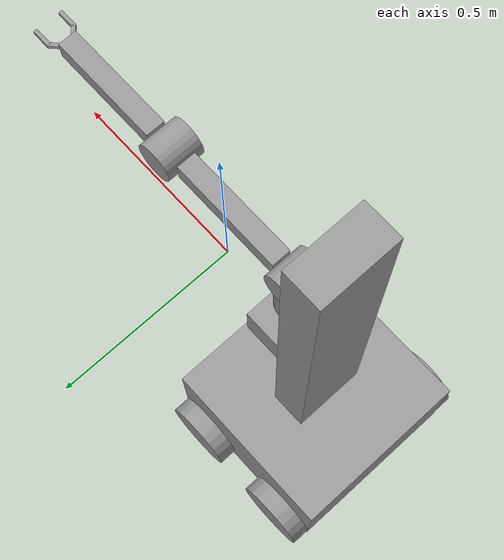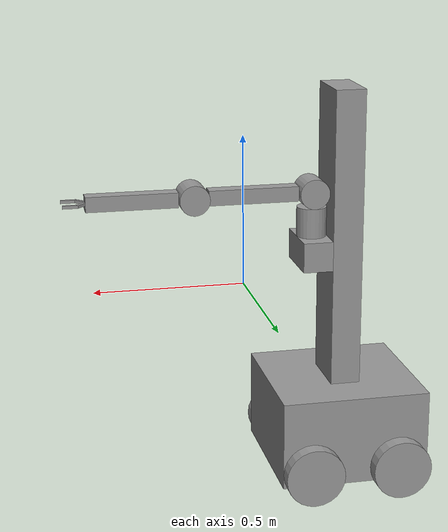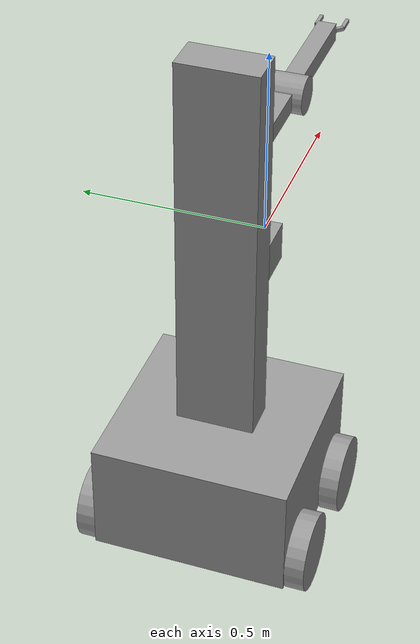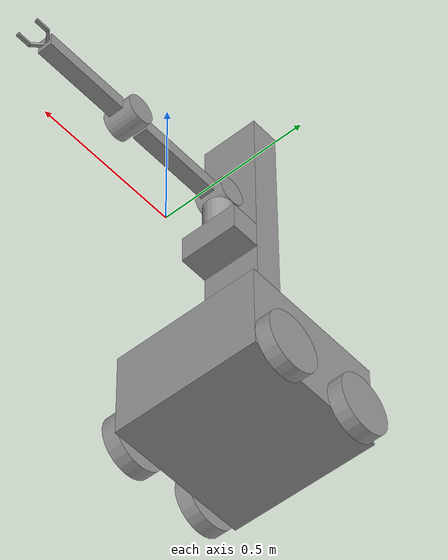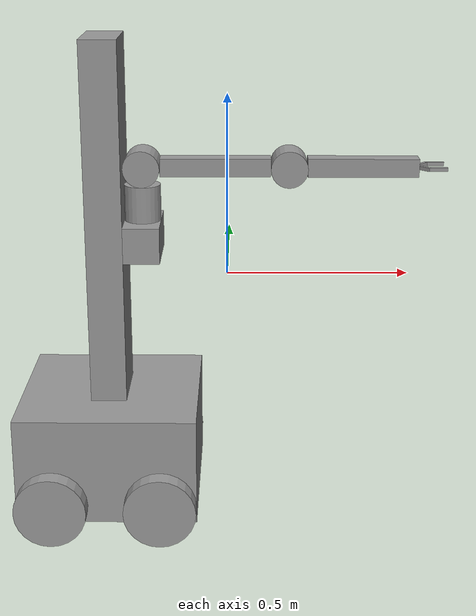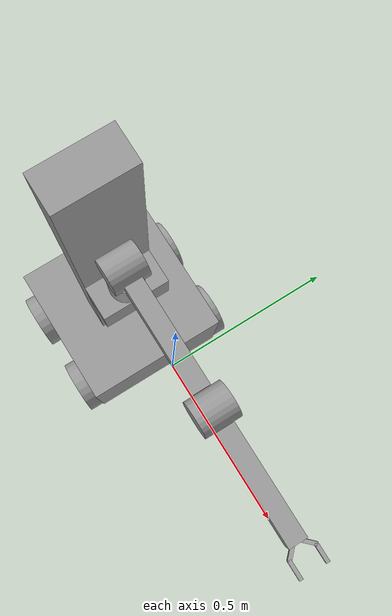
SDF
<?xml version='1.0'?>
<sdf version='1.6'>
  <model name='mymobilearm'>
    <link name='link_0'>
      <inertial>
        <mass>1</mass>
        <inertia>
          <ixx>0.166667</ixx>
          <ixy>0</ixy>
          <ixz>0</ixz>
          <iyy>0.166667</iyy>
          <iyz>0</iyz>
          <izz>0.166667</izz>
        </inertia>
        <pose frame=''>0 0 0 0 -0 0</pose>
      </inertial>
      <pose frame=''>-0.332375 0 -0.496874 0 -0 0</pose>
      <gravity>1</gravity>
      <self_collide>0</self_collide>
      <kinematic>0</kinematic>
      <enable_wind>0</enable_wind>
      <visual name='visual'>
        <pose frame=''>0 0 0 0 -0 0</pose>
        <geometry>
          <box>
            <size>0.5 0.5 0.3</size>
          </box>
        </geometry>
        <material>
          <lighting>1</lighting>
          <script>
            <uri>file://media/materials/scripts/gazebo.material</uri>
            <name>Gazebo/Grey</name>
          </script>
          <shader type='pixel'>
            <normal_map>__default__</normal_map>
          </shader>
          <ambient>0.3 0.3 0.3 1</ambient>
          <diffuse>0.7 0.7 0.7 1</diffuse>
          <specular>0.01 0.01 0.01 1</specular>
          <emissive>0 0 0 1</emissive>
        </material>
        <transparency>0</transparency>
        <cast_shadows>1</cast_shadows>
      </visual>
      <collision name='collision'>
        <laser_retro>0</laser_retro>
        <max_contacts>10</max_contacts>
        <pose frame=''>0 0 0 0 -0 0</pose>
        <geometry>
          <box>
            <size>0.5 0.5 0.3</size>
          </box>
        </geometry>
        <surface>
          <friction>
            <ode>
              <mu>1</mu>
              <mu2>1</mu2>
              <fdir1>0 0 0</fdir1>
              <slip1>0</slip1>
              <slip2>0</slip2>
            </ode>
            <torsional>
              <coefficient>1</coefficient>
              <patch_radius>0</patch_radius>
              <surface_radius>0</surface_radius>
              <use_patch_radius>1</use_patch_radius>
              <ode>
                <slip>0</slip>
              </ode>
            </torsional>
          </friction>
          <bounce>
            <restitution_coefficient>0</restitution_coefficient>
            <threshold>1e+06</threshold>
          </bounce>
          <contact>
            <collide_without_contact>0</collide_without_contact>
            <collide_without_contact_bitmask>1</collide_without_contact_bitmask>
            <collide_bitmask>1</collide_bitmask>
            <ode>
              <soft_cfm>0</soft_cfm>
              <soft_erp>0.2</soft_erp>
              <kp>1e+13</kp>
              <kd>1</kd>
              <max_vel>0.01</max_vel>
              <min_depth>0</min_depth>
            </ode>
            <bullet>
              <split_impulse>1</split_impulse>
              <split_impulse_penetration_threshold>-0.01</split_impulse_penetration_threshold>
              <soft_cfm>0</soft_cfm>
              <soft_erp>0.2</soft_erp>
              <kp>1e+13</kp>
              <kd>1</kd>
            </bullet>
          </contact>
        </surface>
      </collision>
    </link>
    <link name='link_10'>
      <inertial>
        <mass>1</mass>
        <inertia>
          <ixx>0.166667</ixx>
          <ixy>0</ixy>
          <ixz>0</ixz>
          <iyy>0.166667</iyy>
          <iyz>0</iyz>
          <izz>0.166667</izz>
        </inertia>
        <pose frame=''>0 0 0 0 -0 0</pose>
      </inertial>
      <pose frame=''>-0.332375 0 0.153126 0 -0 0</pose>
      <gravity>1</gravity>
      <self_collide>0</self_collide>
      <kinematic>0</kinematic>
      <enable_wind>0</enable_wind>
      <visual name='visual'>
        <pose frame=''>0 0 0 0 -0 0</pose>
        <geometry>
          <box>
            <size>0.1 0.2 1</size>
          </box>
        </geometry>
        <material>
          <lighting>1</lighting>
          <script>
            <uri>file://media/materials/scripts/gazebo.material</uri>
            <name>Gazebo/Grey</name>
          </script>
          <shader type='pixel'>
            <normal_map>__default__</normal_map>
          </shader>
          <ambient>0.3 0.3 0.3 1</ambient>
          <diffuse>0.7 0.7 0.7 1</diffuse>
          <specular>0.01 0.01 0.01 1</specular>
          <emissive>0 0 0 1</emissive>
        </material>
        <transparency>0</transparency>
        <cast_shadows>1</cast_shadows>
      </visual>
      <collision name='collision'>
        <laser_retro>0</laser_retro>
        <max_contacts>10</max_contacts>
        <pose frame=''>0 0 0 0 -0 0</pose>
        <geometry>
          <box>
            <size>0.1 0.2 1</size>
          </box>
        </geometry>
        <surface>
          <friction>
            <ode>
              <mu>1</mu>
              <mu2>1</mu2>
              <fdir1>0 0 0</fdir1>
              <slip1>0</slip1>
              <slip2>0</slip2>
            </ode>
            <torsional>
              <coefficient>1</coefficient>
              <patch_radius>0</patch_radius>
              <surface_radius>0</surface_radius>
              <use_patch_radius>1</use_patch_radius>
              <ode>
                <slip>0</slip>
              </ode>
            </torsional>
          </friction>
          <bounce>
            <restitution_coefficient>0</restitution_coefficient>
            <threshold>1e+06</threshold>
          </bounce>
          <contact>
            <collide_without_contact>0</collide_without_contact>
            <collide_without_contact_bitmask>1</collide_without_contact_bitmask>
            <collide_bitmask>1</collide_bitmask>
            <ode>
              <soft_cfm>0</soft_cfm>
              <soft_erp>0.2</soft_erp>
              <kp>1e+13</kp>
              <kd>1</kd>
              <max_vel>0.01</max_vel>
              <min_depth>0</min_depth>
            </ode>
            <bullet>
              <split_impulse>1</split_impulse>
              <split_impulse_penetration_threshold>-0.01</split_impulse_penetration_threshold>
              <soft_cfm>0</soft_cfm>
              <soft_erp>0.2</soft_erp>
              <kp>1e+13</kp>
              <kd>1</kd>
            </bullet>
          </contact>
        </surface>
      </collision>
    </link>
    <link name='link_11'>
      <inertial>
        <mass>1</mass>
        <inertia>
          <ixx>0.166667</ixx>
          <ixy>0</ixy>
          <ixz>0</ixz>
          <iyy>0.166667</iyy>
          <iyz>0</iyz>
          <izz>0.166667</izz>
        </inertia>
        <pose frame=''>0 0 0 0 -0 0</pose>
      </inertial>
      <pose frame=''>-0.232375 0 0.103126 0 -0 0</pose>
      <gravity>1</gravity>
      <self_collide>0</self_collide>
      <kinematic>0</kinematic>
      <enable_wind>0</enable_wind>
      <visual name='visual'>
        <pose frame=''>0 0 0 0 -0 0</pose>
        <geometry>
          <box>
            <size>0.1 0.2 0.1</size>
          </box>
        </geometry>
        <material>
          <lighting>1</lighting>
          <script>
            <uri>file://media/materials/scripts/gazebo.material</uri>
            <name>Gazebo/Grey</name>
          </script>
          <shader type='pixel'>
            <normal_map>__default__</normal_map>
          </shader>
          <ambient>0.3 0.3 0.3 1</ambient>
          <diffuse>0.7 0.7 0.7 1</diffuse>
          <specular>0.01 0.01 0.01 1</specular>
          <emissive>0 0 0 1</emissive>
        </material>
        <transparency>0</transparency>
        <cast_shadows>1</cast_shadows>
      </visual>
      <collision name='collision'>
        <laser_retro>0</laser_retro>
        <max_contacts>10</max_contacts>
        <pose frame=''>0 0 0 0 -0 0</pose>
        <geometry>
          <box>
            <size>0.1 0.2 0.1</size>
          </box>
        </geometry>
        <surface>
          <friction>
            <ode>
              <mu>1</mu>
              <mu2>1</mu2>
              <fdir1>0 0 0</fdir1>
              <slip1>0</slip1>
              <slip2>0</slip2>
            </ode>
            <torsional>
              <coefficient>1</coefficient>
              <patch_radius>0</patch_radius>
              <surface_radius>0</surface_radius>
              <use_patch_radius>1</use_patch_radius>
              <ode>
                <slip>0</slip>
              </ode>
            </torsional>
          </friction>
          <bounce>
            <restitution_coefficient>0</restitution_coefficient>
            <threshold>1e+06</threshold>
          </bounce>
          <contact>
            <collide_without_contact>0</collide_without_contact>
            <collide_without_contact_bitmask>1</collide_without_contact_bitmask>
            <collide_bitmask>1</collide_bitmask>
            <ode>
              <soft_cfm>0</soft_cfm>
              <soft_erp>0.2</soft_erp>
              <kp>1e+13</kp>
              <kd>1</kd>
              <max_vel>0.01</max_vel>
              <min_depth>0</min_depth>
            </ode>
            <bullet>
              <split_impulse>1</split_impulse>
              <split_impulse_penetration_threshold>-0.01</split_impulse_penetration_threshold>
              <soft_cfm>0</soft_cfm>
              <soft_erp>0.2</soft_erp>
              <kp>1e+13</kp>
              <kd>1</kd>
            </bullet>
          </contact>
        </surface>
      </collision>
    </link>
    <link name='link_12'>
      <inertial>
        <mass>1</mass>
        <inertia>
          <ixx>0.145833</ixx>
          <ixy>0</ixy>
          <ixz>0</ixz>
          <iyy>0.145833</iyy>
          <iyz>0</iyz>
          <izz>0.125</izz>
        </inertia>
        <pose frame=''>0 0 0 0 -0 0</pose>
      </inertial>
      <pose frame=''>-0.232375 0 0.203126 0 -0 0</pose>
      <gravity>1</gravity>
      <self_collide>0</self_collide>
      <kinematic>0</kinematic>
      <enable_wind>0</enable_wind>
      <visual name='visual'>
        <pose frame=''>0 0 0 0 -0 0</pose>
        <geometry>
          <cylinder>
            <radius>0.05</radius>
            <length>0.1</length>
          </cylinder>
        </geometry>
        <material>
          <lighting>1</lighting>
          <script>
            <uri>file://media/materials/scripts/gazebo.material</uri>
            <name>Gazebo/Grey</name>
          </script>
          <shader type='pixel'>
            <normal_map>__default__</normal_map>
          </shader>
          <ambient>0.3 0.3 0.3 1</ambient>
          <diffuse>0.7 0.7 0.7 1</diffuse>
          <specular>0.01 0.01 0.01 1</specular>
          <emissive>0 0 0 1</emissive>
        </material>
        <transparency>0</transparency>
        <cast_shadows>1</cast_shadows>
      </visual>
      <collision name='collision'>
        <laser_retro>0</laser_retro>
        <max_contacts>10</max_contacts>
        <pose frame=''>0 0 0 0 -0 0</pose>
        <geometry>
          <cylinder>
            <radius>0.05</radius>
            <length>0.1</length>
          </cylinder>
        </geometry>
        <surface>
          <friction>
            <ode>
              <mu>1</mu>
              <mu2>1</mu2>
              <fdir1>0 0 0</fdir1>
              <slip1>0</slip1>
              <slip2>0</slip2>
            </ode>
            <torsional>
              <coefficient>1</coefficient>
              <patch_radius>0</patch_radius>
              <surface_radius>0</surface_radius>
              <use_patch_radius>1</use_patch_radius>
              <ode>
                <slip>0</slip>
              </ode>
            </torsional>
          </friction>
          <bounce>
            <restitution_coefficient>0</restitution_coefficient>
            <threshold>1e+06</threshold>
          </bounce>
          <contact>
            <collide_without_contact>0</collide_without_contact>
            <collide_without_contact_bitmask>1</collide_without_contact_bitmask>
            <collide_bitmask>1</collide_bitmask>
            <ode>
              <soft_cfm>0</soft_cfm>
              <soft_erp>0.2</soft_erp>
              <kp>1e+13</kp>
              <kd>1</kd>
              <max_vel>0.01</max_vel>
              <min_depth>0</min_depth>
            </ode>
            <bullet>
              <split_impulse>1</split_impulse>
              <split_impulse_penetration_threshold>-0.01</split_impulse_penetration_threshold>
              <soft_cfm>0</soft_cfm>
              <soft_erp>0.2</soft_erp>
              <kp>1e+13</kp>
              <kd>1</kd>
            </bullet>
          </contact>
        </surface>
      </collision>
    </link>
    <link name='link_12_clone'>
      <inertial>
        <mass>1</mass>
        <inertia>
          <ixx>0.145833</ixx>
          <ixy>0</ixy>
          <ixz>0</ixz>
          <iyy>0.145833</iyy>
          <iyz>0</iyz>
          <izz>0.125</izz>
        </inertia>
        <pose frame=''>0 0 0 0 -0 0</pose>
      </inertial>
      <pose frame=''>-0.232375 0 0.303126 1.5707 -0 0</pose>
      <gravity>1</gravity>
      <self_collide>0</self_collide>
      <kinematic>0</kinematic>
      <enable_wind>0</enable_wind>
      <visual name='visual'>
        <pose frame=''>0 0 0 0 -0 0</pose>
        <geometry>
          <cylinder>
            <radius>0.05</radius>
            <length>0.1</length>
          </cylinder>
        </geometry>
        <material>
          <lighting>1</lighting>
          <script>
            <uri>file://media/materials/scripts/gazebo.material</uri>
            <name>Gazebo/Grey</name>
          </script>
          <shader type='pixel'>
            <normal_map>__default__</normal_map>
          </shader>
          <ambient>0.3 0.3 0.3 1</ambient>
          <diffuse>0.7 0.7 0.7 1</diffuse>
          <specular>0.01 0.01 0.01 1</specular>
          <emissive>0 0 0 1</emissive>
        </material>
        <transparency>0</transparency>
        <cast_shadows>1</cast_shadows>
      </visual>
      <collision name='collision'>
        <laser_retro>0</laser_retro>
        <max_contacts>10</max_contacts>
        <pose frame=''>0 0 0 0 -0 0</pose>
        <geometry>
          <cylinder>
            <radius>0.05</radius>
            <length>0.1</length>
          </cylinder>
        </geometry>
        <surface>
          <friction>
            <ode>
              <mu>1</mu>
              <mu2>1</mu2>
              <fdir1>0 0 0</fdir1>
              <slip1>0</slip1>
              <slip2>0</slip2>
            </ode>
            <torsional>
              <coefficient>1</coefficient>
              <patch_radius>0</patch_radius>
              <surface_radius>0</surface_radius>
              <use_patch_radius>1</use_patch_radius>
              <ode>
                <slip>0</slip>
              </ode>
            </torsional>
          </friction>
          <bounce>
            <restitution_coefficient>0</restitution_coefficient>
            <threshold>1e+06</threshold>
          </bounce>
          <contact>
            <collide_without_contact>0</collide_without_contact>
            <collide_without_contact_bitmask>1</collide_without_contact_bitmask>
            <collide_bitmask>1</collide_bitmask>
            <ode>
              <soft_cfm>0</soft_cfm>
              <soft_erp>0.2</soft_erp>
              <kp>1e+13</kp>
              <kd>1</kd>
              <max_vel>0.01</max_vel>
              <min_depth>0</min_depth>
            </ode>
            <bullet>
              <split_impulse>1</split_impulse>
              <split_impulse_penetration_threshold>-0.01</split_impulse_penetration_threshold>
              <soft_cfm>0</soft_cfm>
              <soft_erp>0.2</soft_erp>
              <kp>1e+13</kp>
              <kd>1</kd>
            </bullet>
          </contact>
        </surface>
      </collision>
    </link>
    <link name='link_12_clone_clone'>
      <inertial>
        <mass>1</mass>
        <inertia>
          <ixx>0.145833</ixx>
          <ixy>0</ixy>
          <ixz>0</ixz>
          <iyy>0.145833</iyy>
          <iyz>0</iyz>
          <izz>0.125</izz>
        </inertia>
        <pose frame=''>0 0 0 0 -0 0</pose>
      </inertial>
      <pose frame=''>0.167625 0 0.303126 1.5707 -0 0</pose>
      <gravity>1</gravity>
      <self_collide>0</self_collide>
      <kinematic>0</kinematic>
      <enable_wind>0</enable_wind>
      <visual name='visual'>
        <pose frame=''>0 0 0 0 -0 0</pose>
        <geometry>
          <cylinder>
            <radius>0.05</radius>
            <length>0.1</length>
          </cylinder>
        </geometry>
        <material>
          <lighting>1</lighting>
          <script>
            <uri>file://media/materials/scripts/gazebo.material</uri>
            <name>Gazebo/Grey</name>
          </script>
          <shader type='pixel'>
            <normal_map>__default__</normal_map>
          </shader>
          <ambient>0.3 0.3 0.3 1</ambient>
          <diffuse>0.7 0.7 0.7 1</diffuse>
          <specular>0.01 0.01 0.01 1</specular>
          <emissive>0 0 0 1</emissive>
        </material>
        <transparency>0</transparency>
        <cast_shadows>1</cast_shadows>
      </visual>
      <collision name='collision'>
        <laser_retro>0</laser_retro>
        <max_contacts>10</max_contacts>
        <pose frame=''>0 0 0 0 -0 0</pose>
        <geometry>
          <cylinder>
            <radius>0.05</radius>
            <length>0.1</length>
          </cylinder>
        </geometry>
        <surface>
          <friction>
            <ode>
              <mu>1</mu>
              <mu2>1</mu2>
              <fdir1>0 0 0</fdir1>
              <slip1>0</slip1>
              <slip2>0</slip2>
            </ode>
            <torsional>
              <coefficient>1</coefficient>
              <patch_radius>0</patch_radius>
              <surface_radius>0</surface_radius>
              <use_patch_radius>1</use_patch_radius>
              <ode>
                <slip>0</slip>
              </ode>
            </torsional>
          </friction>
          <bounce>
            <restitution_coefficient>0</restitution_coefficient>
            <threshold>1e+06</threshold>
          </bounce>
          <contact>
            <collide_without_contact>0</collide_without_contact>
            <collide_without_contact_bitmask>1</collide_without_contact_bitmask>
            <collide_bitmask>1</collide_bitmask>
            <ode>
              <soft_cfm>0</soft_cfm>
              <soft_erp>0.2</soft_erp>
              <kp>1e+13</kp>
              <kd>1</kd>
              <max_vel>0.01</max_vel>
              <min_depth>0</min_depth>
            </ode>
            <bullet>
              <split_impulse>1</split_impulse>
              <split_impulse_penetration_threshold>-0.01</split_impulse_penetration_threshold>
              <soft_cfm>0</soft_cfm>
              <soft_erp>0.2</soft_erp>
              <kp>1e+13</kp>
              <kd>1</kd>
            </bullet>
          </contact>
        </surface>
      </collision>
    </link>
    <link name='link_14'>
      <inertial>
        <mass>1</mass>
        <inertia>
          <ixx>0.166667</ixx>
          <ixy>0</ixy>
          <ixz>0</ixz>
          <iyy>0.166667</iyy>
          <iyz>0</iyz>
          <izz>0.166667</izz>
        </inertia>
        <pose frame=''>0 0 0 0 -0 0</pose>
      </inertial>
      <pose frame=''>-0.032375 0 0.303126 1.5707 -0 0</pose>
      <gravity>1</gravity>
      <self_collide>0</self_collide>
      <kinematic>0</kinematic>
      <enable_wind>0</enable_wind>
      <visual name='visual'>
        <pose frame=''>0 0 0 0 -0 0</pose>
        <geometry>
          <box>
            <size>0.3 0.05 0.05</size>
          </box>
        </geometry>
        <material>
          <lighting>1</lighting>
          <script>
            <uri>file://media/materials/scripts/gazebo.material</uri>
            <name>Gazebo/Grey</name>
          </script>
          <shader type='pixel'>
            <normal_map>__default__</normal_map>
          </shader>
          <ambient>0.3 0.3 0.3 1</ambient>
          <diffuse>0.7 0.7 0.7 1</diffuse>
          <specular>0.01 0.01 0.01 1</specular>
          <emissive>0 0 0 1</emissive>
        </material>
        <transparency>0</transparency>
        <cast_shadows>1</cast_shadows>
      </visual>
      <collision name='collision'>
        <laser_retro>0</laser_retro>
        <max_contacts>10</max_contacts>
        <pose frame=''>0 0 0 0 -0 0</pose>
        <geometry>
          <box>
            <size>0.3 0.05 0.05</size>
          </box>
        </geometry>
        <surface>
          <friction>
            <ode>
              <mu>1</mu>
              <mu2>1</mu2>
              <fdir1>0 0 0</fdir1>
              <slip1>0</slip1>
              <slip2>0</slip2>
            </ode>
            <torsional>
              <coefficient>1</coefficient>
              <patch_radius>0</patch_radius>
              <surface_radius>0</surface_radius>
              <use_patch_radius>1</use_patch_radius>
              <ode>
                <slip>0</slip>
              </ode>
            </torsional>
          </friction>
          <bounce>
            <restitution_coefficient>0</restitution_coefficient>
            <threshold>1e+06</threshold>
          </bounce>
          <contact>
            <collide_without_contact>0</collide_without_contact>
            <collide_without_contact_bitmask>1</collide_without_contact_bitmask>
            <collide_bitmask>1</collide_bitmask>
            <ode>
              <soft_cfm>0</soft_cfm>
              <soft_erp>0.2</soft_erp>
              <kp>1e+13</kp>
              <kd>1</kd>
              <max_vel>0.01</max_vel>
              <min_depth>0</min_depth>
            </ode>
            <bullet>
              <split_impulse>1</split_impulse>
              <split_impulse_penetration_threshold>-0.01</split_impulse_penetration_threshold>
              <soft_cfm>0</soft_cfm>
              <soft_erp>0.2</soft_erp>
              <kp>1e+13</kp>
              <kd>1</kd>
            </bullet>
          </contact>
        </surface>
      </collision>
    </link>
    <link name='link_14_clone'>
      <inertial>
        <mass>1</mass>
        <inertia>
          <ixx>0.166667</ixx>
          <ixy>0</ixy>
          <ixz>0</ixz>
          <iyy>0.166667</iyy>
          <iyz>0</iyz>
          <izz>0.166667</izz>
        </inertia>
        <pose frame=''>0 0 0 0 -0 0</pose>
      </inertial>
      <pose frame=''>0.367625 0 0.303126 1.5707 -0 0</pose>
      <gravity>1</gravity>
      <self_collide>0</self_collide>
      <kinematic>0</kinematic>
      <enable_wind>0</enable_wind>
      <visual name='visual'>
        <pose frame=''>0 0 0 0 -0 0</pose>
        <geometry>
          <box>
            <size>0.3 0.05 0.05</size>
          </box>
        </geometry>
        <material>
          <lighting>1</lighting>
          <script>
            <uri>file://media/materials/scripts/gazebo.material</uri>
            <name>Gazebo/Grey</name>
          </script>
          <shader type='pixel'>
            <normal_map>__default__</normal_map>
          </shader>
          <ambient>0.3 0.3 0.3 1</ambient>
          <diffuse>0.7 0.7 0.7 1</diffuse>
          <specular>0.01 0.01 0.01 1</specular>
          <emissive>0 0 0 1</emissive>
        </material>
        <transparency>0</transparency>
        <cast_shadows>1</cast_shadows>
      </visual>
      <collision name='collision'>
        <laser_retro>0</laser_retro>
        <max_contacts>10</max_contacts>
        <pose frame=''>0 0 0 0 -0 0</pose>
        <geometry>
          <box>
            <size>0.3 0.05 0.05</size>
          </box>
        </geometry>
        <surface>
          <friction>
            <ode>
              <mu>1</mu>
              <mu2>1</mu2>
              <fdir1>0 0 0</fdir1>
              <slip1>0</slip1>
              <slip2>0</slip2>
            </ode>
            <torsional>
              <coefficient>1</coefficient>
              <patch_radius>0</patch_radius>
              <surface_radius>0</surface_radius>
              <use_patch_radius>1</use_patch_radius>
              <ode>
                <slip>0</slip>
              </ode>
            </torsional>
          </friction>
          <bounce>
            <restitution_coefficient>0</restitution_coefficient>
            <threshold>1e+06</threshold>
          </bounce>
          <contact>
            <collide_without_contact>0</collide_without_contact>
            <collide_without_contact_bitmask>1</collide_without_contact_bitmask>
            <collide_bitmask>1</collide_bitmask>
            <ode>
              <soft_cfm>0</soft_cfm>
              <soft_erp>0.2</soft_erp>
              <kp>1e+13</kp>
              <kd>1</kd>
              <max_vel>0.01</max_vel>
              <min_depth>0</min_depth>
            </ode>
            <bullet>
              <split_impulse>1</split_impulse>
              <split_impulse_penetration_threshold>-0.01</split_impulse_penetration_threshold>
              <soft_cfm>0</soft_cfm>
              <soft_erp>0.2</soft_erp>
              <kp>1e+13</kp>
              <kd>1</kd>
            </bullet>
          </contact>
        </surface>
      </collision>
    </link>
    <link name='link_15'>
      <inertial>
        <mass>1</mass>
        <inertia>
          <ixx>0.166667</ixx>
          <ixy>0</ixy>
          <ixz>0</ixz>
          <iyy>0.166667</iyy>
          <iyz>0</iyz>
          <izz>0.166667</izz>
        </inertia>
        <pose frame=''>0 0 0 0 -0 0</pose>
      </inertial>
      <pose frame=''>0.566625 0.036 0.303126 0 -0 0</pose>
      <gravity>1</gravity>
      <self_collide>0</self_collide>
      <kinematic>0</kinematic>
      <enable_wind>0</enable_wind>
      <visual name='visual'>
        <pose frame=''>0 0 0 0 -0 0</pose>
        <geometry>
          <box>
            <size>0.05 0.01 0.01</size>
          </box>
        </geometry>
        <material>
          <lighting>1</lighting>
          <script>
            <uri>file://media/materials/scripts/gazebo.material</uri>
            <name>Gazebo/Grey</name>
          </script>
          <shader type='pixel'>
            <normal_map>__default__</normal_map>
          </shader>
          <ambient>0.3 0.3 0.3 1</ambient>
          <diffuse>0.7 0.7 0.7 1</diffuse>
          <specular>0.01 0.01 0.01 1</specular>
          <emissive>0 0 0 1</emissive>
        </material>
        <transparency>0</transparency>
        <cast_shadows>1</cast_shadows>
      </visual>
      <collision name='collision'>
        <laser_retro>0</laser_retro>
        <max_contacts>10</max_contacts>
        <pose frame=''>0 0 0 0 -0 0</pose>
        <geometry>
          <box>
            <size>0.05 0.01 0.01</size>
          </box>
        </geometry>
        <surface>
          <friction>
            <ode>
              <mu>1</mu>
              <mu2>1</mu2>
              <fdir1>0 0 0</fdir1>
              <slip1>0</slip1>
              <slip2>0</slip2>
            </ode>
            <torsional>
              <coefficient>1</coefficient>
              <patch_radius>0</patch_radius>
              <surface_radius>0</surface_radius>
              <use_patch_radius>1</use_patch_radius>
              <ode>
                <slip>0</slip>
              </ode>
            </torsional>
          </friction>
          <bounce>
            <restitution_coefficient>0</restitution_coefficient>
            <threshold>1e+06</threshold>
          </bounce>
          <contact>
            <collide_without_contact>0</collide_without_contact>
            <collide_without_contact_bitmask>1</collide_without_contact_bitmask>
            <collide_bitmask>1</collide_bitmask>
            <ode>
              <soft_cfm>0</soft_cfm>
              <soft_erp>0.2</soft_erp>
              <kp>1e+13</kp>
              <kd>1</kd>
              <max_vel>0.01</max_vel>
              <min_depth>0</min_depth>
            </ode>
            <bullet>
              <split_impulse>1</split_impulse>
              <split_impulse_penetration_threshold>-0.01</split_impulse_penetration_threshold>
              <soft_cfm>0</soft_cfm>
              <soft_erp>0.2</soft_erp>
              <kp>1e+13</kp>
              <kd>1</kd>
            </bullet>
          </contact>
        </surface>
      </collision>
    </link>
    <link name='link_15_clone'>
      <inertial>
        <mass>1</mass>
        <inertia>
          <ixx>0.166667</ixx>
          <ixy>0</ixy>
          <ixz>0</ixz>
          <iyy>0.166667</iyy>
          <iyz>0</iyz>
          <izz>0.166667</izz>
        </inertia>
        <pose frame=''>0 0 0 0 -0 0</pose>
      </inertial>
      <pose frame=''>0.566625 -0.036 0.303126 0 -0 0</pose>
      <gravity>1</gravity>
      <self_collide>0</self_collide>
      <kinematic>0</kinematic>
      <enable_wind>0</enable_wind>
      <visual name='visual'>
        <pose frame=''>0 0 0 0 -0 0</pose>
        <geometry>
          <box>
            <size>0.05 0.01 0.01</size>
          </box>
        </geometry>
        <material>
          <lighting>1</lighting>
          <script>
            <uri>file://media/materials/scripts/gazebo.material</uri>
            <name>Gazebo/Grey</name>
          </script>
          <shader type='pixel'>
            <normal_map>__default__</normal_map>
          </shader>
          <ambient>0.3 0.3 0.3 1</ambient>
          <diffuse>0.7 0.7 0.7 1</diffuse>
          <specular>0.01 0.01 0.01 1</specular>
          <emissive>0 0 0 1</emissive>
        </material>
        <transparency>0</transparency>
        <cast_shadows>1</cast_shadows>
      </visual>
      <collision name='collision'>
        <laser_retro>0</laser_retro>
        <max_contacts>10</max_contacts>
        <pose frame=''>0 0 0 0 -0 0</pose>
        <geometry>
          <box>
            <size>0.05 0.01 0.01</size>
          </box>
        </geometry>
        <surface>
          <friction>
            <ode>
              <mu>1</mu>
              <mu2>1</mu2>
              <fdir1>0 0 0</fdir1>
              <slip1>0</slip1>
              <slip2>0</slip2>
            </ode>
            <torsional>
              <coefficient>1</coefficient>
              <patch_radius>0</patch_radius>
              <surface_radius>0</surface_radius>
              <use_patch_radius>1</use_patch_radius>
              <ode>
                <slip>0</slip>
              </ode>
            </torsional>
          </friction>
          <bounce>
            <restitution_coefficient>0</restitution_coefficient>
            <threshold>1e+06</threshold>
          </bounce>
          <contact>
            <collide_without_contact>0</collide_without_contact>
            <collide_without_contact_bitmask>1</collide_without_contact_bitmask>
            <collide_bitmask>1</collide_bitmask>
            <ode>
              <soft_cfm>0</soft_cfm>
              <soft_erp>0.2</soft_erp>
              <kp>1e+13</kp>
              <kd>1</kd>
              <max_vel>0.01</max_vel>
              <min_depth>0</min_depth>
            </ode>
            <bullet>
              <split_impulse>1</split_impulse>
              <split_impulse_penetration_threshold>-0.01</split_impulse_penetration_threshold>
              <soft_cfm>0</soft_cfm>
              <soft_erp>0.2</soft_erp>
              <kp>1e+13</kp>
              <kd>1</kd>
            </bullet>
          </contact>
        </surface>
      </collision>
    </link>
    <link name='link_15_clone_0'>
      <inertial>
        <mass>1</mass>
        <inertia>
          <ixx>0.166667</ixx>
          <ixy>0</ixy>
          <ixz>0</ixz>
          <iyy>0.166667</iyy>
          <iyz>0</iyz>
          <izz>0.166667</izz>
        </inertia>
        <pose frame=''>0 0 0 0 -0 0</pose>
      </inertial>
      <pose frame=''>0.527625 -0.02 0.303126 0 0 -0.785398</pose>
      <gravity>1</gravity>
      <self_collide>0</self_collide>
      <kinematic>0</kinematic>
      <enable_wind>0</enable_wind>
      <visual name='visual'>
        <pose frame=''>0 0 0 0 -0 0</pose>
        <geometry>
          <box>
            <size>0.05 0.01 0.01</size>
          </box>
        </geometry>
        <material>
          <lighting>1</lighting>
          <script>
            <uri>file://media/materials/scripts/gazebo.material</uri>
            <name>Gazebo/Grey</name>
          </script>
          <shader type='pixel'>
            <normal_map>__default__</normal_map>
          </shader>
          <ambient>0.3 0.3 0.3 1</ambient>
          <diffuse>0.7 0.7 0.7 1</diffuse>
          <specular>0.01 0.01 0.01 1</specular>
          <emissive>0 0 0 1</emissive>
        </material>
        <transparency>0</transparency>
        <cast_shadows>1</cast_shadows>
      </visual>
      <collision name='collision'>
        <laser_retro>0</laser_retro>
        <max_contacts>10</max_contacts>
        <pose frame=''>0 0 0 0 -0 0</pose>
        <geometry>
          <box>
            <size>0.05 0.01 0.01</size>
          </box>
        </geometry>
        <surface>
          <friction>
            <ode>
              <mu>1</mu>
              <mu2>1</mu2>
              <fdir1>0 0 0</fdir1>
              <slip1>0</slip1>
              <slip2>0</slip2>
            </ode>
            <torsional>
              <coefficient>1</coefficient>
              <patch_radius>0</patch_radius>
              <surface_radius>0</surface_radius>
              <use_patch_radius>1</use_patch_radius>
              <ode>
                <slip>0</slip>
              </ode>
            </torsional>
          </friction>
          <bounce>
            <restitution_coefficient>0</restitution_coefficient>
            <threshold>1e+06</threshold>
          </bounce>
          <contact>
            <collide_without_contact>0</collide_without_contact>
            <collide_without_contact_bitmask>1</collide_without_contact_bitmask>
            <collide_bitmask>1</collide_bitmask>
            <ode>
              <soft_cfm>0</soft_cfm>
              <soft_erp>0.2</soft_erp>
              <kp>1e+13</kp>
              <kd>1</kd>
              <max_vel>0.01</max_vel>
              <min_depth>0</min_depth>
            </ode>
            <bullet>
              <split_impulse>1</split_impulse>
              <split_impulse_penetration_threshold>-0.01</split_impulse_penetration_threshold>
              <soft_cfm>0</soft_cfm>
              <soft_erp>0.2</soft_erp>
              <kp>1e+13</kp>
              <kd>1</kd>
            </bullet>
          </contact>
        </surface>
      </collision>
    </link>
    <link name='link_15_clone_1'>
      <inertial>
        <mass>1</mass>
        <inertia>
          <ixx>0.166667</ixx>
          <ixy>0</ixy>
          <ixz>0</ixz>
          <iyy>0.166667</iyy>
          <iyz>0</iyz>
          <izz>0.166667</izz>
        </inertia>
        <pose frame=''>0 0 0 0 -0 0</pose>
      </inertial>
      <pose frame=''>0.527625 0.02 0.303126 0 -0 0.785398</pose>
      <gravity>1</gravity>
      <self_collide>0</self_collide>
      <kinematic>0</kinematic>
      <enable_wind>0</enable_wind>
      <visual name='visual'>
        <pose frame=''>0 0 0 0 -0 0</pose>
        <geometry>
          <box>
            <size>0.05 0.01 0.01</size>
          </box>
        </geometry>
        <material>
          <lighting>1</lighting>
          <script>
            <uri>file://media/materials/scripts/gazebo.material</uri>
            <name>Gazebo/Grey</name>
          </script>
          <shader type='pixel'>
            <normal_map>__default__</normal_map>
          </shader>
          <ambient>0.3 0.3 0.3 1</ambient>
          <diffuse>0.7 0.7 0.7 1</diffuse>
          <specular>0.01 0.01 0.01 1</specular>
          <emissive>0 0 0 1</emissive>
        </material>
        <transparency>0</transparency>
        <cast_shadows>1</cast_shadows>
      </visual>
      <collision name='collision'>
        <laser_retro>0</laser_retro>
        <max_contacts>10</max_contacts>
        <pose frame=''>0 0 0 0 -0 0</pose>
        <geometry>
          <box>
            <size>0.05 0.01 0.01</size>
          </box>
        </geometry>
        <surface>
          <friction>
            <ode>
              <mu>1</mu>
              <mu2>1</mu2>
              <fdir1>0 0 0</fdir1>
              <slip1>0</slip1>
              <slip2>0</slip2>
            </ode>
            <torsional>
              <coefficient>1</coefficient>
              <patch_radius>0</patch_radius>
              <surface_radius>0</surface_radius>
              <use_patch_radius>1</use_patch_radius>
              <ode>
                <slip>0</slip>
              </ode>
            </torsional>
          </friction>
          <bounce>
            <restitution_coefficient>0</restitution_coefficient>
            <threshold>1e+06</threshold>
          </bounce>
          <contact>
            <collide_without_contact>0</collide_without_contact>
            <collide_without_contact_bitmask>1</collide_without_contact_bitmask>
            <collide_bitmask>1</collide_bitmask>
            <ode>
              <soft_cfm>0</soft_cfm>
              <soft_erp>0.2</soft_erp>
              <kp>1e+13</kp>
              <kd>1</kd>
              <max_vel>0.01</max_vel>
              <min_depth>0</min_depth>
            </ode>
            <bullet>
              <split_impulse>1</split_impulse>
              <split_impulse_penetration_threshold>-0.01</split_impulse_penetration_threshold>
              <soft_cfm>0</soft_cfm>
              <soft_erp>0.2</soft_erp>
              <kp>1e+13</kp>
              <kd>1</kd>
            </bullet>
          </contact>
        </surface>
      </collision>
    </link>
    <link name='link_1_clone'>
      <inertial>
        <mass>1</mass>
        <inertia>
          <ixx>0.145833</ixx>
          <ixy>0</ixy>
          <ixz>0</ixz>
          <iyy>0.145833</iyy>
          <iyz>0</iyz>
          <izz>0.125</izz>
        </inertia>
        <pose frame=''>0 0 0.1 0 -0 0</pose>
      </inertial>
      <pose frame=''>-0.182375 0.27501 -0.596879 1.5707 -0 0</pose>
      <gravity>1</gravity>
      <self_collide>0</self_collide>
      <kinematic>0</kinematic>
      <enable_wind>0</enable_wind>
      <visual name='visual'>
        <pose frame=''>0 0 0 0 -0 0</pose>
        <geometry>
          <cylinder>
            <radius>0.1</radius>
            <length>0.05</length>
          </cylinder>
        </geometry>
        <material>
          <lighting>1</lighting>
          <script>
            <uri>file://media/materials/scripts/gazebo.material</uri>
            <name>Gazebo/Grey</name>
          </script>
          <shader type='pixel'>
            <normal_map>__default__</normal_map>
          </shader>
          <ambient>0.3 0.3 0.3 1</ambient>
          <diffuse>0.7 0.7 0.7 1</diffuse>
          <specular>0.01 0.01 0.01 1</specular>
          <emissive>0 0 0 1</emissive>
        </material>
        <transparency>0</transparency>
        <cast_shadows>1</cast_shadows>
      </visual>
      <collision name='collision'>
        <laser_retro>0</laser_retro>
        <max_contacts>10</max_contacts>
        <pose frame=''>0 0 0 0 -0 0</pose>
        <geometry>
          <cylinder>
            <radius>0.1</radius>
            <length>0.05</length>
          </cylinder>
        </geometry>
        <surface>
          <friction>
            <ode>
              <mu>1</mu>
              <mu2>1</mu2>
              <fdir1>0 0 0</fdir1>
              <slip1>0</slip1>
              <slip2>0</slip2>
            </ode>
            <torsional>
              <coefficient>1</coefficient>
              <patch_radius>0</patch_radius>
              <surface_radius>0</surface_radius>
              <use_patch_radius>1</use_patch_radius>
              <ode>
                <slip>0</slip>
              </ode>
            </torsional>
          </friction>
          <bounce>
            <restitution_coefficient>0</restitution_coefficient>
            <threshold>1e+06</threshold>
          </bounce>
          <contact>
            <collide_without_contact>0</collide_without_contact>
            <collide_without_contact_bitmask>1</collide_without_contact_bitmask>
            <collide_bitmask>1</collide_bitmask>
            <ode>
              <soft_cfm>0</soft_cfm>
              <soft_erp>0.2</soft_erp>
              <kp>1e+13</kp>
              <kd>1</kd>
              <max_vel>0.01</max_vel>
              <min_depth>0</min_depth>
            </ode>
            <bullet>
              <split_impulse>1</split_impulse>
              <split_impulse_penetration_threshold>-0.01</split_impulse_penetration_threshold>
              <soft_cfm>0</soft_cfm>
              <soft_erp>0.2</soft_erp>
              <kp>1e+13</kp>
              <kd>1</kd>
            </bullet>
          </contact>
        </surface>
      </collision>
    </link>
    <link name='link_1_clone_clone'>
      <inertial>
        <mass>1</mass>
        <inertia>
          <ixx>0.145833</ixx>
          <ixy>0</ixy>
          <ixz>0</ixz>
          <iyy>0.145833</iyy>
          <iyz>0</iyz>
          <izz>0.125</izz>
        </inertia>
        <pose frame=''>0 0 0.1 0 -0 0</pose>
      </inertial>
      <pose frame=''>-0.182375 -0.27501 -0.596879 1.5707 -0 0</pose>
      <gravity>1</gravity>
      <self_collide>0</self_collide>
      <kinematic>0</kinematic>
      <enable_wind>0</enable_wind>
      <visual name='visual'>
        <pose frame=''>0 0 0 0 -0 0</pose>
        <geometry>
          <cylinder>
            <radius>0.1</radius>
            <length>0.05</length>
          </cylinder>
        </geometry>
        <material>
          <lighting>1</lighting>
          <script>
            <uri>file://media/materials/scripts/gazebo.material</uri>
            <name>Gazebo/Grey</name>
          </script>
          <shader type='pixel'>
            <normal_map>__default__</normal_map>
          </shader>
          <ambient>0.3 0.3 0.3 1</ambient>
          <diffuse>0.7 0.7 0.7 1</diffuse>
          <specular>0.01 0.01 0.01 1</specular>
          <emissive>0 0 0 1</emissive>
        </material>
        <transparency>0</transparency>
        <cast_shadows>1</cast_shadows>
      </visual>
      <collision name='collision'>
        <laser_retro>0</laser_retro>
        <max_contacts>10</max_contacts>
        <pose frame=''>0 0 0 0 -0 0</pose>
        <geometry>
          <cylinder>
            <radius>0.1</radius>
            <length>0.05</length>
          </cylinder>
        </geometry>
        <surface>
          <friction>
            <ode>
              <mu>1</mu>
              <mu2>1</mu2>
              <fdir1>0 0 0</fdir1>
              <slip1>0</slip1>
              <slip2>0</slip2>
            </ode>
            <torsional>
              <coefficient>1</coefficient>
              <patch_radius>0</patch_radius>
              <surface_radius>0</surface_radius>
              <use_patch_radius>1</use_patch_radius>
              <ode>
                <slip>0</slip>
              </ode>
            </torsional>
          </friction>
          <bounce>
            <restitution_coefficient>0</restitution_coefficient>
            <threshold>1e+06</threshold>
          </bounce>
          <contact>
            <collide_without_contact>0</collide_without_contact>
            <collide_without_contact_bitmask>1</collide_without_contact_bitmask>
            <collide_bitmask>1</collide_bitmask>
            <ode>
              <soft_cfm>0</soft_cfm>
              <soft_erp>0.2</soft_erp>
              <kp>1e+13</kp>
              <kd>1</kd>
              <max_vel>0.01</max_vel>
              <min_depth>0</min_depth>
            </ode>
            <bullet>
              <split_impulse>1</split_impulse>
              <split_impulse_penetration_threshold>-0.01</split_impulse_penetration_threshold>
              <soft_cfm>0</soft_cfm>
              <soft_erp>0.2</soft_erp>
              <kp>1e+13</kp>
              <kd>1</kd>
            </bullet>
          </contact>
        </surface>
      </collision>
    </link>
    <link name='link_1_clone_clone_0'>
      <inertial>
        <mass>1</mass>
        <inertia>
          <ixx>0.145833</ixx>
          <ixy>0</ixy>
          <ixz>0</ixz>
          <iyy>0.145833</iyy>
          <iyz>0</iyz>
          <izz>0.125</izz>
        </inertia>
        <pose frame=''>0 0 0.1 0 -0 0</pose>
      </inertial>
      <pose frame=''>-0.482375 -0.27501 -0.596879 1.5707 -0 0</pose>
      <gravity>1</gravity>
      <self_collide>0</self_collide>
      <kinematic>0</kinematic>
      <enable_wind>0</enable_wind>
      <visual name='visual'>
        <pose frame=''>0 0 0 0 -0 0</pose>
        <geometry>
          <cylinder>
            <radius>0.1</radius>
            <length>0.05</length>
          </cylinder>
        </geometry>
        <material>
          <lighting>1</lighting>
          <script>
            <uri>file://media/materials/scripts/gazebo.material</uri>
            <name>Gazebo/Grey</name>
          </script>
          <shader type='pixel'>
            <normal_map>__default__</normal_map>
          </shader>
          <ambient>0.3 0.3 0.3 1</ambient>
          <diffuse>0.7 0.7 0.7 1</diffuse>
          <specular>0.01 0.01 0.01 1</specular>
          <emissive>0 0 0 1</emissive>
        </material>
        <transparency>0</transparency>
        <cast_shadows>1</cast_shadows>
      </visual>
      <collision name='collision'>
        <laser_retro>0</laser_retro>
        <max_contacts>10</max_contacts>
        <pose frame=''>0 0 0 0 -0 0</pose>
        <geometry>
          <cylinder>
            <radius>0.1</radius>
            <length>0.05</length>
          </cylinder>
        </geometry>
        <surface>
          <friction>
            <ode>
              <mu>1</mu>
              <mu2>1</mu2>
              <fdir1>0 0 0</fdir1>
              <slip1>0</slip1>
              <slip2>0</slip2>
            </ode>
            <torsional>
              <coefficient>1</coefficient>
              <patch_radius>0</patch_radius>
              <surface_radius>0</surface_radius>
              <use_patch_radius>1</use_patch_radius>
              <ode>
                <slip>0</slip>
              </ode>
            </torsional>
          </friction>
          <bounce>
            <restitution_coefficient>0</restitution_coefficient>
            <threshold>1e+06</threshold>
          </bounce>
          <contact>
            <collide_without_contact>0</collide_without_contact>
            <collide_without_contact_bitmask>1</collide_without_contact_bitmask>
            <collide_bitmask>1</collide_bitmask>
            <ode>
              <soft_cfm>0</soft_cfm>
              <soft_erp>0.2</soft_erp>
              <kp>1e+13</kp>
              <kd>1</kd>
              <max_vel>0.01</max_vel>
              <min_depth>0</min_depth>
            </ode>
            <bullet>
              <split_impulse>1</split_impulse>
              <split_impulse_penetration_threshold>-0.01</split_impulse_penetration_threshold>
              <soft_cfm>0</soft_cfm>
              <soft_erp>0.2</soft_erp>
              <kp>1e+13</kp>
              <kd>1</kd>
            </bullet>
          </contact>
        </surface>
      </collision>
    </link>
    <link name='link_1_clone_clone_1'>
      <inertial>
        <mass>1</mass>
        <inertia>
          <ixx>0.145833</ixx>
          <ixy>0</ixy>
          <ixz>0</ixz>
          <iyy>0.145833</iyy>
          <iyz>0</iyz>
          <izz>0.125</izz>
        </inertia>
        <pose frame=''>0 0 0.1 0 -0 0</pose>
      </inertial>
      <pose frame=''>-0.482375 0.27501 -0.596879 1.5707 -0 0</pose>
      <gravity>1</gravity>
      <self_collide>0</self_collide>
      <kinematic>0</kinematic>
      <enable_wind>0</enable_wind>
      <visual name='visual'>
        <pose frame=''>0 0 0 0 -0 0</pose>
        <geometry>
          <cylinder>
            <radius>0.1</radius>
            <length>0.05</length>
          </cylinder>
        </geometry>
        <material>
          <lighting>1</lighting>
          <script>
            <uri>file://media/materials/scripts/gazebo.material</uri>
            <name>Gazebo/Grey</name>
          </script>
          <shader type='pixel'>
            <normal_map>__default__</normal_map>
          </shader>
          <ambient>0.3 0.3 0.3 1</ambient>
          <diffuse>0.7 0.7 0.7 1</diffuse>
          <specular>0.01 0.01 0.01 1</specular>
          <emissive>0 0 0 1</emissive>
        </material>
        <transparency>0</transparency>
        <cast_shadows>1</cast_shadows>
      </visual>
      <collision name='collision'>
        <laser_retro>0</laser_retro>
        <max_contacts>10</max_contacts>
        <pose frame=''>0 0 0 0 -0 0</pose>
        <geometry>
          <cylinder>
            <radius>0.1</radius>
            <length>0.05</length>
          </cylinder>
        </geometry>
        <surface>
          <friction>
            <ode>
              <mu>1</mu>
              <mu2>1</mu2>
              <fdir1>0 0 0</fdir1>
              <slip1>0</slip1>
              <slip2>0</slip2>
            </ode>
            <torsional>
              <coefficient>1</coefficient>
              <patch_radius>0</patch_radius>
              <surface_radius>0</surface_radius>
              <use_patch_radius>1</use_patch_radius>
              <ode>
                <slip>0</slip>
              </ode>
            </torsional>
          </friction>
          <bounce>
            <restitution_coefficient>0</restitution_coefficient>
            <threshold>1e+06</threshold>
          </bounce>
          <contact>
            <collide_without_contact>0</collide_without_contact>
            <collide_without_contact_bitmask>1</collide_without_contact_bitmask>
            <collide_bitmask>1</collide_bitmask>
            <ode>
              <soft_cfm>0</soft_cfm>
              <soft_erp>0.2</soft_erp>
              <kp>1e+13</kp>
              <kd>1</kd>
              <max_vel>0.01</max_vel>
              <min_depth>0</min_depth>
            </ode>
            <bullet>
              <split_impulse>1</split_impulse>
              <split_impulse_penetration_threshold>-0.01</split_impulse_penetration_threshold>
              <soft_cfm>0</soft_cfm>
              <soft_erp>0.2</soft_erp>
              <kp>1e+13</kp>
              <kd>1</kd>
            </bullet>
          </contact>
        </surface>
      </collision>
    </link>
    <joint name='link_0_JOINT_0' type='revolute'>
      <parent>link_0</parent>
      <child>link_1_clone</child>
      <pose frame=''>0 0 0 0 -0 0</pose>
      <axis>
        <xyz>0 0 1</xyz>
        <use_parent_model_frame>0</use_parent_model_frame>
        <limit>
          <lower>-1.79769e+308</lower>
          <upper>1.79769e+308</upper>
          <effort>-1</effort>
          <velocity>-1</velocity>
        </limit>
        <dynamics>
          <spring_reference>0</spring_reference>
          <spring_stiffness>0</spring_stiffness>
          <damping>0</damping>
        </dynamics>
      </axis>
      <physics>
        <ode>
          <limit>
            <cfm>0</cfm>
            <erp>0.2</erp>
          </limit>
          <suspension>
            <cfm>0</cfm>
            <erp>0.2</erp>
          </suspension>
        </ode>
      </physics>
    </joint>
    <joint name='link_0_JOINT_13' type='fixed'>
      <parent>link_0</parent>
      <child>link_10</child>
      <pose frame=''>0 0 0 0 -0 0</pose>
      <physics>
        <ode>
          <limit>
            <cfm>0</cfm>
            <erp>0.2</erp>
          </limit>
          <suspension>
            <cfm>0</cfm>
            <erp>0.2</erp>
          </suspension>
        </ode>
      </physics>
    </joint>
    <joint name='link_0_JOINT_1' type='revolute'>
      <parent>link_0</parent>
      <child>link_1_clone_clone_1</child>
      <pose frame=''>0 0 0 0 -0 0</pose>
      <axis>
        <xyz>0 0 1</xyz>
        <use_parent_model_frame>0</use_parent_model_frame>
        <limit>
          <lower>-1.79769e+308</lower>
          <upper>1.79769e+308</upper>
          <effort>-1</effort>
          <velocity>-1</velocity>
        </limit>
        <dynamics>
          <spring_reference>0</spring_reference>
          <spring_stiffness>0</spring_stiffness>
          <damping>0</damping>
        </dynamics>
      </axis>
      <physics>
        <ode>
          <limit>
            <cfm>0</cfm>
            <erp>0.2</erp>
          </limit>
          <suspension>
            <cfm>0</cfm>
            <erp>0.2</erp>
          </suspension>
        </ode>
      </physics>
    </joint>
    <joint name='link_0_JOINT_2' type='revolute'>
      <parent>link_0</parent>
      <child>link_1_clone_clone_0</child>
      <pose frame=''>0 0 0 0 -0 0</pose>
      <axis>
        <xyz>0 0 1</xyz>
        <use_parent_model_frame>0</use_parent_model_frame>
        <limit>
          <lower>-1.79769e+308</lower>
          <upper>1.79769e+308</upper>
          <effort>-1</effort>
          <velocity>-1</velocity>
        </limit>
        <dynamics>
          <spring_reference>0</spring_reference>
          <spring_stiffness>0</spring_stiffness>
          <damping>0</damping>
        </dynamics>
      </axis>
      <physics>
        <ode>
          <limit>
            <cfm>0</cfm>
            <erp>0.2</erp>
          </limit>
          <suspension>
            <cfm>0</cfm>
            <erp>0.2</erp>
          </suspension>
        </ode>
      </physics>
    </joint>
    <joint name='link_0_JOINT_3' type='revolute'>
      <parent>link_0</parent>
      <child>link_1_clone_clone</child>
      <pose frame=''>0 0 0 0 -0 0</pose>
      <axis>
        <xyz>0 0 1</xyz>
        <use_parent_model_frame>0</use_parent_model_frame>
        <limit>
          <lower>-1.79769e+308</lower>
          <upper>1.79769e+308</upper>
          <effort>-1</effort>
          <velocity>-1</velocity>
        </limit>
        <dynamics>
          <spring_reference>0</spring_reference>
          <spring_stiffness>0</spring_stiffness>
          <damping>0</damping>
          <friction>0</friction>
        </dynamics>
      </axis>
      <physics>
        <ode>
          <limit>
            <cfm>0</cfm>
            <erp>0.2</erp>
          </limit>
          <suspension>
            <cfm>0</cfm>
            <erp>0.2</erp>
          </suspension>
        </ode>
      </physics>
    </joint>
    <joint name='link_10_JOINT_14' type='prismatic'>
      <parent>link_10</parent>
      <child>link_11</child>
      <pose frame=''>0 0 0 0 -0 0</pose>
      <axis>
        <xyz>0 0 1</xyz>
        <use_parent_model_frame>0</use_parent_model_frame>
        <limit>
          <lower>-1.79769e+308</lower>
          <upper>1.79769e+308</upper>
          <effort>-1</effort>
          <velocity>-1</velocity>
        </limit>
        <dynamics>
          <spring_reference>0</spring_reference>
          <spring_stiffness>0</spring_stiffness>
          <damping>0</damping>
        </dynamics>
      </axis>
      <physics>
        <ode>
          <limit>
            <cfm>0</cfm>
            <erp>0.2</erp>
          </limit>
          <suspension>
            <cfm>0</cfm>
            <erp>0.2</erp>
          </suspension>
        </ode>
      </physics>
    </joint>
    <joint name='link_11_JOINT_15' type='revolute'>
      <parent>link_11</parent>
      <child>link_12</child>
      <pose frame=''>0 0 0 0 -0 0</pose>
      <axis>
        <xyz>0 0 1</xyz>
        <use_parent_model_frame>0</use_parent_model_frame>
        <limit>
          <lower>-1.79769e+308</lower>
          <upper>1.79769e+308</upper>
          <effort>-1</effort>
          <velocity>-1</velocity>
        </limit>
        <dynamics>
          <spring_reference>0</spring_reference>
          <spring_stiffness>0</spring_stiffness>
          <damping>0</damping>
        </dynamics>
      </axis>
      <physics>
        <ode>
          <limit>
            <cfm>0</cfm>
            <erp>0.2</erp>
          </limit>
          <suspension>
            <cfm>0</cfm>
            <erp>0.2</erp>
          </suspension>
        </ode>
      </physics>
    </joint>
    <joint name='link_12_JOINT_16' type='revolute'>
      <parent>link_12</parent>
      <child>link_12_clone</child>
      <pose frame=''>0 0 0 0 -0 0</pose>
      <axis>
        <xyz>0 0 1</xyz>
        <use_parent_model_frame>0</use_parent_model_frame>
        <limit>
          <lower>-1.79769e+308</lower>
          <upper>1.79769e+308</upper>
          <effort>-1</effort>
          <velocity>-1</velocity>
        </limit>
        <dynamics>
          <spring_reference>0</spring_reference>
          <spring_stiffness>0</spring_stiffness>
          <damping>0</damping>
          <friction>0</friction>
        </dynamics>
      </axis>
      <physics>
        <ode>
          <limit>
            <cfm>0</cfm>
            <erp>0.2</erp>
          </limit>
          <suspension>
            <cfm>0</cfm>
            <erp>0.2</erp>
          </suspension>
        </ode>
      </physics>
    </joint>
    <joint name='link_12_clone_JOINT_17' type='fixed'>
      <parent>link_12_clone</parent>
      <child>link_14</child>
      <pose frame=''>0 0 0 0 -0 0</pose>
      <physics>
        <ode>
          <limit>
            <cfm>0</cfm>
            <erp>0.2</erp>
          </limit>
          <suspension>
            <cfm>0</cfm>
            <erp>0.2</erp>
          </suspension>
        </ode>
      </physics>
    </joint>
    <joint name='link_12_clone_clone_JOINT_19' type='fixed'>
      <parent>link_12_clone_clone</parent>
      <child>link_14_clone</child>
      <pose frame=''>0 0 0 0 -0 0</pose>
      <physics>
        <ode>
          <limit>
            <cfm>0</cfm>
            <erp>0.2</erp>
          </limit>
          <suspension>
            <cfm>0</cfm>
            <erp>0.2</erp>
          </suspension>
        </ode>
      </physics>
    </joint>
    <joint name='link_14_JOINT_18' type='revolute'>
      <parent>link_14</parent>
      <child>link_12_clone_clone</child>
      <pose frame=''>0 0 0 0 -0 0</pose>
      <axis>
        <xyz>0 0 1</xyz>
        <use_parent_model_frame>0</use_parent_model_frame>
        <limit>
          <lower>-1.79769e+308</lower>
          <upper>1.79769e+308</upper>
          <effort>-1</effort>
          <velocity>-1</velocity>
        </limit>
        <dynamics>
          <spring_reference>0</spring_reference>
          <spring_stiffness>0</spring_stiffness>
          <damping>0</damping>
        </dynamics>
      </axis>
      <physics>
        <ode>
          <limit>
            <cfm>0</cfm>
            <erp>0.2</erp>
          </limit>
          <suspension>
            <cfm>0</cfm>
            <erp>0.2</erp>
          </suspension>
        </ode>
      </physics>
    </joint>
    <joint name='link_14_clone_JOINT_20' type='fixed'>
      <parent>link_14_clone</parent>
      <child>link_15_clone_0</child>
      <pose frame=''>0 0 0 0 -0 0</pose>
      <physics>
        <ode>
          <limit>
            <cfm>0</cfm>
            <erp>0.2</erp>
          </limit>
          <suspension>
            <cfm>0</cfm>
            <erp>0.2</erp>
          </suspension>
        </ode>
      </physics>
    </joint>
    <joint name='link_14_clone_JOINT_23' type='fixed'>
      <parent>link_14_clone</parent>
      <child>link_15_clone_1</child>
      <pose frame=''>0 0 0 0 -0 0</pose>
      <physics>
        <ode>
          <limit>
            <cfm>0</cfm>
            <erp>0.2</erp>
          </limit>
          <suspension>
            <cfm>0</cfm>
            <erp>0.2</erp>
          </suspension>
        </ode>
      </physics>
    </joint>
    <joint name='link_15_clone_0_JOINT_24' type='fixed'>
      <parent>link_15_clone_0</parent>
      <child>link_15_clone</child>
      <pose frame=''>0 0 0 0 -0 0</pose>
      <physics>
        <ode>
          <limit>
            <cfm>0</cfm>
            <erp>0.2</erp>
          </limit>
          <suspension>
            <cfm>0</cfm>
            <erp>0.2</erp>
          </suspension>
        </ode>
      </physics>
    </joint>
    <joint name='link_15_clone_1_JOINT_25' type='fixed'>
      <parent>link_15_clone_1</parent>
      <child>link_15_LINK_FRAME_VISUAL___X_AXIS</child>
      <pose frame=''>0 0 0 0 -0 0</pose>
      <physics>
        <ode>
          <limit>
            <cfm>0</cfm>
            <erp>0.2</erp>
          </limit>
          <suspension>
            <cfm>0</cfm>
            <erp>0.2</erp>
          </suspension>
        </ode>
      </physics>
    </joint>
    <static>0</static>
    <allow_auto_disable>1</allow_auto_disable>
  </model>
</sdf>
